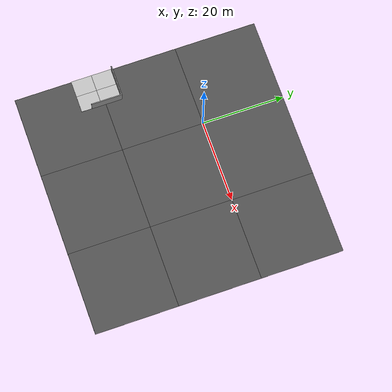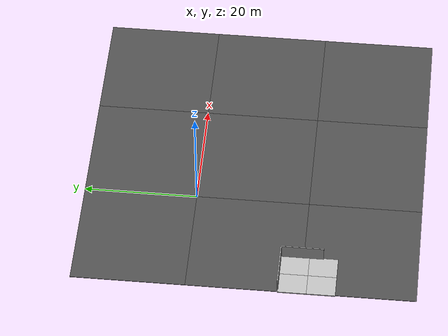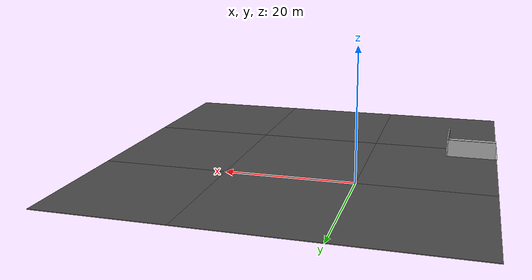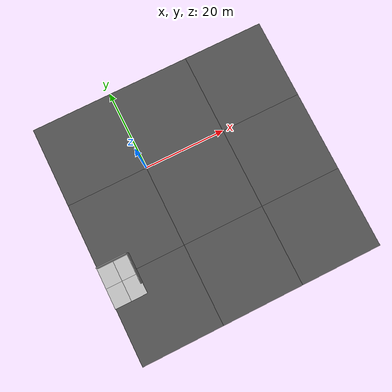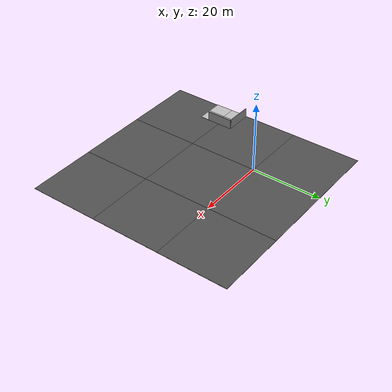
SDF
<sdf version="1.4">
 <world name="default">
  <light name="sun" type="directional">
   <pose>0 0 10 0 0 0</pose>
   <diffuse>0.8 0.8 0.8 1</diffuse>
   <specular>0.2 0.2 0.2 1</specular>
   <attenuation>
    <range>1000</range>
    <constant>0.9</constant>
    <linear>0.01</linear>
    <quadratic>0.001</quadratic>
   </attenuation>
   <direction>-0.5 0.1 -0.9</direction>
  </light>
  <physics type="ode">
   <ode>
    <solver><type>quick</type><iters>1000</iters><sor>1.3</sor></solver>
    <constraints>
     <cfm>0</cfm>
     <erp>0.2</erp>
     <contact_max_correcting_vel>100</contact_max_correcting_vel>
     <contact_surface_layer>0.001</contact_surface_layer>
    </constraints>
   </ode>
   <max_step_size>0.01</max_step_size>
   <real_time_factor>1</real_time_factor>
   <real_time_update_rate>100</real_time_update_rate>
   <gravity>0 0 -9.8</gravity>
  </physics>
  <scene><ambient>0.4 0.4 0.4 1</ambient><background>0.7 0.7 0.7 1</background><shadows>1</shadows></scene>
  <spherical_coordinates>
   <surface_model>EARTH_WGS84</surface_model>
   <latitude_deg>47.3667</latitude_deg>
   <longitude_deg>8.5500</longitude_deg>
   <elevation>500.0</elevation>
   <heading_deg>0</heading_deg>
  </spherical_coordinates>
  <model name="asphalt_plane">
   <static>1</static>
   <link name="link">
    <collision name="collision"><geometry><box><size>20 20 0.1</size></box></geometry></collision>
    <visual name="visual">
     <cast_shadows>0</cast_shadows>
     <geometry><box><size>20 20 0.1</size></box></geometry>
     <material>
      <script>
       <uri>model://asphalt_plane/materials/scripts</uri>
       <uri>model://asphalt_plane/materials/textures</uri>
       <name>vrc/asphalt</name>
      </script>
     </material>
    </visual>
    <velocity_decay><linear>0</linear><angular>0</angular></velocity_decay>
   </link>
   <pose>10 10 0 0 0 0</pose>
  </model>
  <model name="asphalt_plane_0">
   <static>1</static>
   <link name="link">
    <collision name="collision"><geometry><box><size>20 20 0.1</size></box></geometry></collision>
    <visual name="visual">
     <cast_shadows>0</cast_shadows>
     <geometry><box><size>20 20 0.1</size></box></geometry>
     <material>
      <script>
       <uri>model://asphalt_plane/materials/scripts</uri>
       <uri>model://asphalt_plane/materials/textures</uri>
       <name>vrc/asphalt</name>
      </script>
     </material>
    </visual>
    <velocity_decay><linear>0</linear><angular>0</angular></velocity_decay>
   </link>
   <pose>10 -10 0 0 0 0</pose>
  </model>
  <model name="asphalt_plane_1">
   <static>1</static>
   <link name="link">
    <collision name="collision"><geometry><box><size>20 20 0.1</size></box></geometry></collision>
    <visual name="visual">
     <cast_shadows>0</cast_shadows>
     <geometry><box><size>20 20 0.1</size></box></geometry>
     <material>
      <script>
       <uri>model://asphalt_plane/materials/scripts</uri>
       <uri>model://asphalt_plane/materials/textures</uri>
       <name>vrc/asphalt</name>
      </script>
     </material>
    </visual>
    <velocity_decay><linear>0</linear><angular>0</angular></velocity_decay>
   </link>
   <pose>-10 10 0 0 0 0</pose>
  </model>
  <model name="asphalt_plane_2">
   <static>1</static>
   <link name="link">
    <collision name="collision"><geometry><box><size>20 20 0.1</size></box></geometry></collision>
    <visual name="visual">
     <cast_shadows>0</cast_shadows>
     <geometry><box><size>20 20 0.1</size></box></geometry>
     <material>
      <script>
       <uri>model://asphalt_plane/materials/scripts</uri>
       <uri>model://asphalt_plane/materials/textures</uri>
       <name>vrc/asphalt</name>
      </script>
     </material>
    </visual>
    <velocity_decay><linear>0</linear><angular>0</angular></velocity_decay>
   </link>
   <pose>-10 -10 0 0 0 0</pose>
  </model>
  <model name="asphalt_plane_3">
   <static>1</static>
   <link name="link">
    <collision name="collision"><geometry><box><size>20 20 0.1</size></box></geometry></collision>
    <visual name="visual">
     <cast_shadows>0</cast_shadows>
     <geometry><box><size>20 20 0.1</size></box></geometry>
     <material>
      <script>
       <uri>model://asphalt_plane/materials/scripts</uri>
       <uri>model://asphalt_plane/materials/textures</uri>
       <name>vrc/asphalt</name>
      </script>
     </material>
    </visual>
    <velocity_decay><linear>0</linear><angular>0</angular></velocity_decay>
   </link>
   <pose>-10 -30 0 0 0 0</pose>
  </model>
  <model name="asphalt_plane_4">
   <static>1</static>
   <link name="link">
    <collision name="collision"><geometry><box><size>20 20 0.1</size></box></geometry></collision>
    <visual name="visual">
     <cast_shadows>0</cast_shadows>
     <geometry><box><size>20 20 0.1</size></box></geometry>
     <material>
      <script>
       <uri>model://asphalt_plane/materials/scripts</uri>
       <uri>model://asphalt_plane/materials/textures</uri>
       <name>vrc/asphalt</name>
      </script>
     </material>
    </visual>
    <velocity_decay><linear>0</linear><angular>0</angular></velocity_decay>
   </link>
   <pose>10 -30 0 0 0 0</pose>
  </model>
  <model name="asphalt_plane_5">
   <static>1</static>
   <link name="link">
    <collision name="collision"><geometry><box><size>20 20 0.1</size></box></geometry></collision>
    <visual name="visual">
     <cast_shadows>0</cast_shadows>
     <geometry><box><size>20 20 0.1</size></box></geometry>
     <material>
      <script>
       <uri>model://asphalt_plane/materials/scripts</uri>
       <uri>model://asphalt_plane/materials/textures</uri>
       <name>vrc/asphalt</name>
      </script>
     </material>
    </visual>
    <velocity_decay><linear>0</linear><angular>0</angular></velocity_decay>
   </link>
   <pose>30 -30 0 0 0 0</pose>
  </model>
  <model name="asphalt_plane_6">
   <static>1</static>
   <link name="link">
    <collision name="collision"><geometry><box><size>20 20 0.1</size></box></geometry></collision>
    <visual name="visual">
     <cast_shadows>0</cast_shadows>
     <geometry><box><size>20 20 0.1</size></box></geometry>
     <material>
      <script>
       <uri>model://asphalt_plane/materials/scripts</uri>
       <uri>model://asphalt_plane/materials/textures</uri>
       <name>vrc/asphalt</name>
      </script>
     </material>
    </visual>
    <velocity_decay><linear>0</linear><angular>0</angular></velocity_decay>
   </link>
   <pose>30 10 0 0 0 0</pose>
  </model>
  <model name="asphalt_plane_7">
   <static>1</static>
   <link name="link">
    <collision name="collision"><geometry><box><size>20 20 0.1</size></box></geometry></collision>
    <visual name="visual">
     <cast_shadows>0</cast_shadows>
     <geometry><box><size>20 20 0.1</size></box></geometry>
     <material>
      <script>
       <uri>model://asphalt_plane/materials/scripts</uri>
       <uri>model://asphalt_plane/materials/textures</uri>
       <name>vrc/asphalt</name>
      </script>
     </material>
    </visual>
    <velocity_decay><linear>0</linear><angular>0</angular></velocity_decay>
   </link>
   <pose>30 -10 0 0 0 0</pose>
  </model>
  <model name="mud_box">
   <static>1</static>
   <link name="link">
    <collision name="collision"><geometry><box><size>8 10 0.2</size></box></geometry></collision>
    <visual name="visual_1">
     <pose>-2 2.5 0 0 0 0</pose>
     <cast_shadows>0</cast_shadows>
     <geometry><box><size>4 5 0.2</size></box></geometry>
     <material>
      <script>
       <uri>model://mud_box/materials/scripts</uri>
       <uri>model://mud_box/materials/textures</uri>
       <name>vrc/mud</name>
      </script>
     </material>
    </visual>
    <visual name="visual_2">
     <pose>2 2.5 0 0 0 0</pose>
     <cast_shadows>0</cast_shadows>
     <geometry><box><size>4 5 0.2</size></box></geometry>
     <material>
      <script>
       <uri>model://mud_box/materials/scripts</uri>
       <uri>model://mud_box/materials/textures</uri>
       <name>vrc/mud</name>
      </script>
     </material>
    </visual>
    <visual name="visual_3">
     <pose>2 -2.5 0 0 0 0</pose>
     <cast_shadows>0</cast_shadows>
     <geometry><box><size>4 5 0.2</size></box></geometry>
     <material>
      <script>
       <uri>model://mud_box/materials/scripts</uri>
       <uri>model://mud_box/materials/textures</uri>
       <name>vrc/mud</name>
      </script>
     </material>
    </visual>
    <visual name="visual_4">
     <pose>-2 -2.5 0 0 0 0</pose>
     <cast_shadows>0</cast_shadows>
     <geometry><box><size>4 5 0.2</size></box></geometry>
     <material>
      <script>
       <uri>model://mud_box/materials/scripts</uri>
       <uri>model://mud_box/materials/textures</uri>
       <name>vrc/mud</name>
      </script>
     </material>
    </visual>
    <velocity_decay><linear>0</linear><angular>0</angular></velocity_decay>
   </link>
   <pose>-16.1 -21 0 0 0 0</pose>
  </model>
  <model name="grey_wall">
   <static>1</static>
   <link name="link">
    <pose>0 0 1.4 0 0 0</pose>
    <collision name="collision"><geometry><box><size>7.5 0.2 2.8</size></box></geometry></collision>
    <visual name="visual">
     <cast_shadows>0</cast_shadows>
     <geometry><box><size>7.5 0.2 2.8</size></box></geometry>
     <material>
      <script>
       <uri>model://grey_wall/materials/scripts</uri>
       <uri>model://grey_wall/materials/textures</uri>
       <name>vrc/grey_wall</name>
      </script>
     </material>
    </visual>
    <velocity_decay><linear>0</linear><angular>0</angular></velocity_decay>
   </link>
   <pose>-16 -16 0 0 0 0</pose>
  </model>
  <model name="grey_wall_0">
   <static>1</static>
   <link name="link">
    <pose>0 0 1.4 0 0 0</pose>
    <collision name="collision"><geometry><box><size>7.5 0.2 2.8</size></box></geometry></collision>
    <visual name="visual">
     <cast_shadows>0</cast_shadows>
     <geometry><box><size>7.5 0.2 2.8</size></box></geometry>
     <material>
      <script>
       <uri>model://grey_wall/materials/scripts</uri>
       <uri>model://grey_wall/materials/textures</uri>
       <name>vrc/grey_wall</name>
      </script>
     </material>
    </visual>
    <velocity_decay><linear>0</linear><angular>0</angular></velocity_decay>
   </link>
   <pose>-12.15 -19.7 0 0 0 -1.57378</pose>
  </model>
  <model name="quad">
   <link name="base">
    <inertial>
     <mass>1</mass>
     <inertia><ixx>0.015</ixx><ixy>0</ixy><ixz>0</ixz><iyy>0.015</iyy><iyz>0</iyz><izz>0.007</izz></inertia>
     <pose>0 0 0.1 0 -0 0</pose>
    </inertial>
    <collision name="base">
     <geometry><cylinder><radius>0.1</radius><length>0.05</length></cylinder></geometry>
    </collision>
    <collision name="land_1">
     <pose>0.1 0 0 0 -0 0</pose>
     <geometry><sphere><radius>0.03</radius></sphere></geometry>
    </collision>
    <collision name="land_2">
     <pose>-0.05 0.086 0 0 -0 0</pose>
     <geometry><sphere><radius>0.03</radius></sphere></geometry>
    </collision>
    <collision name="land_3">
     <pose>-0.05 -0.086 0 0 -0 0</pose>
     <geometry><sphere><radius>0.03</radius></sphere></geometry>
    </collision>
    <visual name="body">
     <geometry><cylinder><radius>0.08</radius><length>0.05</length></cylinder></geometry>
     <material><ambient>1 0.6 0.4 1</ambient><diffuse>1 1 1 1</diffuse></material>
    </visual>
    <visual name="arm-1">
     <pose>0.125 0 0 3.14159 1.57079 3.14159</pose>
     <geometry><cylinder><radius>0.01</radius><length>0.25</length></cylinder></geometry>
     <material><ambient>1 0.4 0.4 1</ambient><diffuse>1 1 1 1</diffuse></material>
    </visual>
    <visual name="arm-2">
     <pose>0 0.125 0 3.14159 1.57079 -1.57079</pose>
     <geometry><cylinder><radius>0.01</radius><length>0.25</length></cylinder></geometry>
     <material><ambient>0.6 0.6 0.6 1</ambient><diffuse>1 1 1 1</diffuse></material>
    </visual>
    <visual name="arm-3">
     <pose>-0.125 0 0 3.14159 1.57079 3.14159</pose>
     <geometry><cylinder><radius>0.01</radius><length>0.25</length></cylinder></geometry>
     <material><ambient>0.6 0.6 0.6 1</ambient><diffuse>1 1 1 1</diffuse></material>
    </visual>
    <visual name="arm-4">
     <pose>0 -0.125 0 3.14159 1.57079 -1.57079</pose>
     <geometry><cylinder><radius>0.01</radius><length>0.25</length></cylinder></geometry>
     <material><ambient>0.6 0.6 0.6 1</ambient><diffuse>1 1 1 1</diffuse></material>
    </visual>
   </link>
   <frame name="rotor-1::__model__" attached_to="rotor-1::propeller">
    <pose relative_to="__model__">0.23 0 0 0 -0 0</pose>
   </frame>
   <link name="rotor-1::propeller">
    <inertial>
     <mass>0.07</mass>
     <inertia><ixx>4e-05</ixx><ixy>0</ixy><ixz>0</ixz><iyy>4e-05</iyy><iyz>0</iyz><izz>8e-05</izz></inertia>
    </inertial>
    <collision name="collision">
     <pose>0 0 0.04 0 -0 0</pose>
     <geometry><cylinder><radius>0.127</radius><length>0.002</length></cylinder></geometry>
    </collision>
    <visual name="motor">
     <pose>0 0 0.015 0 -0 0</pose>
     <geometry><cylinder><radius>0.015</radius><length>0.03</length></cylinder></geometry>
     <material><ambient>0.1 0.1 0.1 1</ambient><diffuse>1 1 1 1</diffuse></material>
    </visual>
    <visual name="axle">
     <pose>0 0 0.035 0 -0 0</pose>
     <geometry><cylinder><radius>0.002</radius><length>0.01</length></cylinder></geometry>
     <material><ambient>0.1 0.1 0.1 1</ambient><diffuse>1 1 1 1</diffuse></material>
    </visual>
    <visual name="blade">
     <pose>0 0 0.04 0 -0 0</pose>
     <geometry><box><size>0.25 0.03 0.002</size></box></geometry>
     <material><ambient>0.1 0.1 0.1 1</ambient><diffuse>1 1 1 1</diffuse></material>
    </visual>
    <pose relative_to="rotor-1::__model__">0 0 0 0 -0 0</pose>
   </link>
   <joint name="rotor-1" type="revolute">
    <parent>base</parent>
    <child>rotor-1::propeller</child>
    <axis>
     <xyz>0 0 1</xyz>
     <limit><lower>-1e+16</lower><upper>1e+16</upper></limit>
     <dynamics><spring_reference>0</spring_reference><spring_stiffness>0</spring_stiffness></dynamics>
    </axis>
   </joint>
   <frame name="rotor-2::__model__" attached_to="rotor-2::propeller">
    <pose relative_to="__model__">0 0.23 0 0 -0 0</pose>
   </frame>
   <link name="rotor-2::propeller">
    <inertial>
     <mass>0.07</mass>
     <inertia><ixx>4e-05</ixx><ixy>0</ixy><ixz>0</ixz><iyy>4e-05</iyy><iyz>0</iyz><izz>8e-05</izz></inertia>
    </inertial>
    <collision name="collision">
     <pose>0 0 0.04 0 -0 0</pose>
     <geometry><cylinder><radius>0.127</radius><length>0.002</length></cylinder></geometry>
    </collision>
    <visual name="motor">
     <pose>0 0 0.015 0 -0 0</pose>
     <geometry><cylinder><radius>0.015</radius><length>0.03</length></cylinder></geometry>
     <material><ambient>0.1 0.1 0.1 1</ambient><diffuse>1 1 1 1</diffuse></material>
    </visual>
    <visual name="axle">
     <pose>0 0 0.035 0 -0 0</pose>
     <geometry><cylinder><radius>0.002</radius><length>0.01</length></cylinder></geometry>
     <material><ambient>0.1 0.1 0.1 1</ambient><diffuse>1 1 1 1</diffuse></material>
    </visual>
    <visual name="blade">
     <pose>0 0 0.04 0 -0 0</pose>
     <geometry><box><size>0.25 0.03 0.002</size></box></geometry>
     <material><ambient>0.1 0.1 0.1 1</ambient><diffuse>1 1 1 1</diffuse></material>
    </visual>
    <pose relative_to="rotor-2::__model__">0 0 0 0 -0 0</pose>
   </link>
   <joint name="rotor-2" type="revolute">
    <parent>base</parent>
    <child>rotor-2::propeller</child>
    <axis>
     <xyz>0 0 1</xyz>
     <limit><lower>-1e+16</lower><upper>1e+16</upper></limit>
     <dynamics><spring_reference>0</spring_reference><spring_stiffness>0</spring_stiffness></dynamics>
    </axis>
   </joint>
   <frame name="rotor-3::__model__" attached_to="rotor-3::propeller">
    <pose relative_to="__model__">-0.23 0 0 0 -0 0</pose>
   </frame>
   <link name="rotor-3::propeller">
    <inertial>
     <mass>0.07</mass>
     <inertia><ixx>4e-05</ixx><ixy>0</ixy><ixz>0</ixz><iyy>4e-05</iyy><iyz>0</iyz><izz>8e-05</izz></inertia>
    </inertial>
    <collision name="collision">
     <pose>0 0 0.04 0 -0 0</pose>
     <geometry><cylinder><radius>0.127</radius><length>0.002</length></cylinder></geometry>
    </collision>
    <visual name="motor">
     <pose>0 0 0.015 0 -0 0</pose>
     <geometry><cylinder><radius>0.015</radius><length>0.03</length></cylinder></geometry>
     <material><ambient>0.1 0.1 0.1 1</ambient><diffuse>1 1 1 1</diffuse></material>
    </visual>
    <visual name="axle">
     <pose>0 0 0.035 0 -0 0</pose>
     <geometry><cylinder><radius>0.002</radius><length>0.01</length></cylinder></geometry>
     <material><ambient>0.1 0.1 0.1 1</ambient><diffuse>1 1 1 1</diffuse></material>
    </visual>
    <visual name="blade">
     <pose>0 0 0.04 0 -0 0</pose>
     <geometry><box><size>0.25 0.03 0.002</size></box></geometry>
     <material><ambient>0.1 0.1 0.1 1</ambient><diffuse>1 1 1 1</diffuse></material>
    </visual>
    <pose relative_to="rotor-3::__model__">0 0 0 0 -0 0</pose>
   </link>
   <joint name="rotor-3" type="revolute">
    <parent>base</parent>
    <child>rotor-3::propeller</child>
    <axis>
     <xyz>0 0 1</xyz>
     <limit><lower>-1e+16</lower><upper>1e+16</upper></limit>
     <dynamics><spring_reference>0</spring_reference><spring_stiffness>0</spring_stiffness></dynamics>
    </axis>
   </joint>
   <frame name="rotor-4::__model__" attached_to="rotor-4::propeller">
    <pose relative_to="__model__">0 -0.23 0 0 -0 0</pose>
   </frame>
   <link name="rotor-4::propeller">
    <inertial>
     <mass>0.07</mass>
     <inertia><ixx>4e-05</ixx><ixy>0</ixy><ixz>0</ixz><iyy>4e-05</iyy><iyz>0</iyz><izz>8e-05</izz></inertia>
    </inertial>
    <collision name="collision">
     <pose>0 0 0.04 0 -0 0</pose>
     <geometry><cylinder><radius>0.127</radius><length>0.002</length></cylinder></geometry>
    </collision>
    <visual name="motor">
     <pose>0 0 0.015 0 -0 0</pose>
     <geometry><cylinder><radius>0.015</radius><length>0.03</length></cylinder></geometry>
     <material><ambient>0.1 0.1 0.1 1</ambient><diffuse>1 1 1 1</diffuse></material>
    </visual>
    <visual name="axle">
     <pose>0 0 0.035 0 -0 0</pose>
     <geometry><cylinder><radius>0.002</radius><length>0.01</length></cylinder></geometry>
     <material><ambient>0.1 0.1 0.1 1</ambient><diffuse>1 1 1 1</diffuse></material>
    </visual>
    <visual name="blade">
     <pose>0 0 0.04 0 -0 0</pose>
     <geometry><box><size>0.25 0.03 0.002</size></box></geometry>
     <material><ambient>0.1 0.1 0.1 1</ambient><diffuse>1 1 1 1</diffuse></material>
    </visual>
    <pose relative_to="rotor-4::__model__">0 0 0 0 -0 0</pose>
   </link>
   <joint name="rotor-4" type="revolute">
    <parent>base</parent>
    <child>rotor-4::propeller</child>
    <axis>
     <xyz>0 0 1</xyz>
     <limit><lower>-1e+16</lower><upper>1e+16</upper></limit>
     <dynamics><spring_reference>0</spring_reference><spring_stiffness>0</spring_stiffness></dynamics>
    </axis>
   </joint>
   <link name="down_camera_link">
    <pose>0 0 0 3.14159 1.57079 3.14159</pose>
    <inertial>
     <mass>0.001</mass>
     <inertia>
      <ixx>3.2061e-05</ixx>
      <ixy>-1.169e-08</ixy>
      <ixz>-4.2601e-10</ixz>
      <iyy>3.0815e-05</iyy>
      <iyz>5.2182e-10</iyz>
      <izz>5.1652e-06</izz>
     </inertia>
    </inertial>
    <visual name="down_camera_visual">
     <geometry><cylinder><radius>0.02</radius><length>0.04</length></cylinder></geometry>
     <material><ambient>0.1 0.1 0.1 1</ambient><diffuse>1 1 1 1</diffuse></material>
    </visual>
    <sensor name="down_camera" type="camera">
     <camera>
      <horizontal_fov>1.2</horizontal_fov>
      <image><format>R8G8B8</format><width>640</width><height>480</height></image>
      <clip><near>0.05</near><far>15000</far></clip>
     </camera>
     <always_on>1</always_on>
     <update_rate>10</update_rate>
     <plugin name="camera_en_ros" filename="libgazebo_ros_camera.so">
      <cameraName>down_camera_link</cameraName>
      <imageTopicName>down_raw_image</imageTopicName>
      <cameraInfoTopicName>down_info_image</cameraInfoTopicName>
      <FrameName>downCameraImage</FrameName>
      <Cy>0</Cy>
      <Cx>0</Cx>
      <updateRate>30.0</updateRate>
     </plugin>
    </sensor>
   </link>
   <joint name="down_camera_joint" type="fixed">
    <child>down_camera_link</child>
    <parent>base</parent>
    <axis><xyz>1 0 0</xyz><limit><lower>-1e+16</lower><upper>1e+16</upper></limit></axis>
   </joint>
   <plugin name="mrsim" filename="mrsim-gazebo.so">
    <link>base</link>
    <rotors>
     <noise>0.03</noise>
     <cf>6.5e-4</cf>
     <ct>1e-5</ct>
     <rotor><joint spin="cw">rotor-1</joint></rotor>
     <rotor><joint spin="ccw">rotor-2</joint></rotor>
     <rotor><joint spin="cw">rotor-3</joint></rotor>
     <rotor><joint spin="ccw">rotor-4</joint></rotor>
    </rotors>
   </plugin>
   <pose>0 0 0.02 0 -0 0</pose>
  </model>
  <plugin name="optitrack" filename="optitrack-gazebo.so">
   <hz>1000</hz>
   <port>1509</port>
   <publish><link>quad::base</link><name>QR</name></publish>
  </plugin>
 </world>
</sdf>
